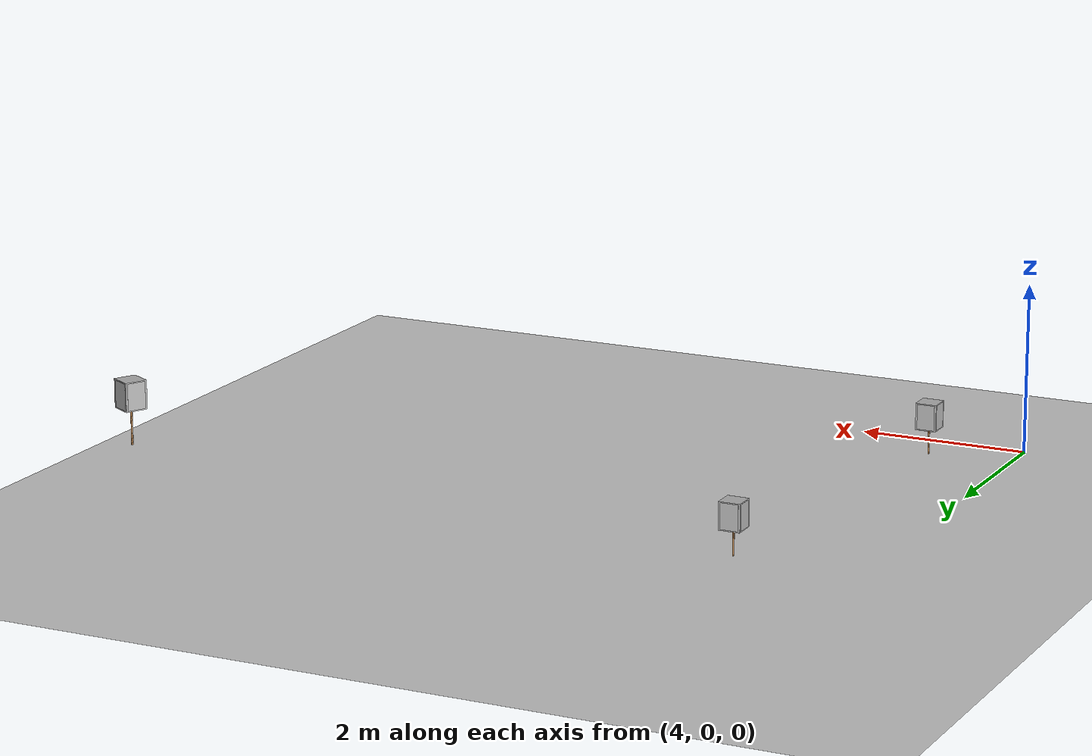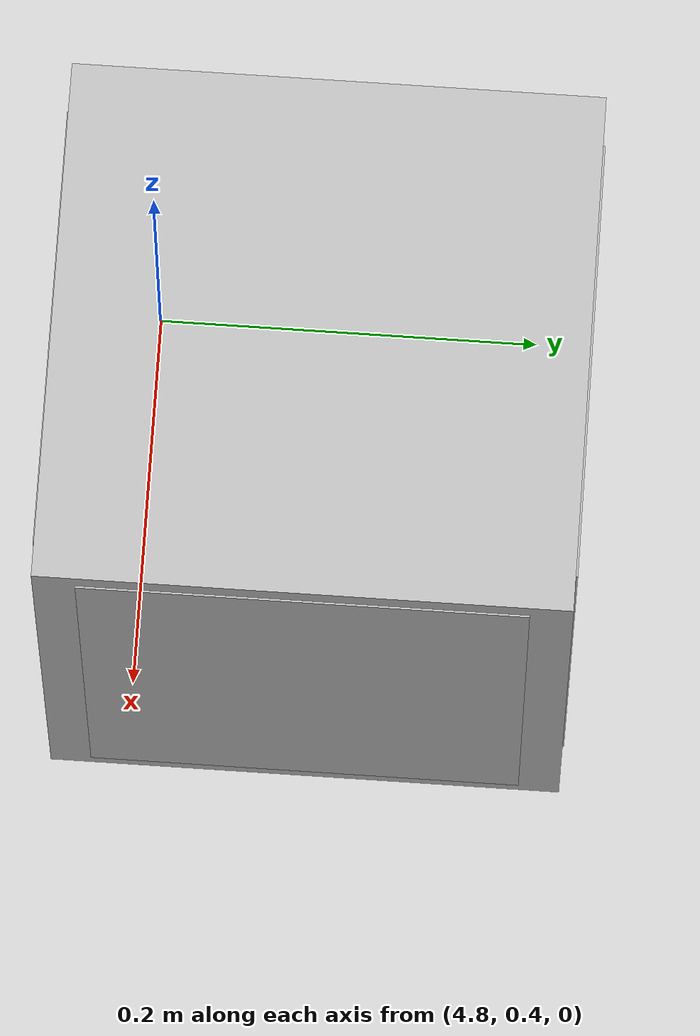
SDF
<?xml version="1.0" ?>
<!-- |    This document was autogenerated by xacro from /home/agrim/antariksh/ERC-Remote-Navigation-Sim/src/leo_erc_desktop/leo_erc_gazebo_worlds/worlds/marsyard2022.world.xacro | -->
<!-- |    EDITING THIS FILE BY HAND IS NOT RECOMMENDED                                 | -->
<?xml-model href="http://sdformat.org/schemas/root.xsd" schematypens="http://www.w3.org/2001/XMLSchema"?>
<sdf version="1.9">
  <world name="marsyard2022">
    <!-- A ground plane -->
    <include>
      <uri>model://ground_plane</uri>
    </include>
    <!-- A global light source -->
    <include>
      <uri>model://sun</uri>
    </include>
    <model name="landmark1">
      <pose>5 0.5 0 0 0 0.0</pose>
      <static>true</static>
      <link name="landmark">
        <visual name="pole_visual">
          <pose>0 0 0.09999999999999999 0 0 0</pose>
          <geometry>
            <cylinder>
              <radius>0.01</radius>
              <length>0.4</length>
            </cylinder>
          </geometry>
          <material>
            <script>
              <name>Gazebo/Wood</name>
            </script>
          </material>
        </visual>
        <collision name="pole_collision">
          <pose>0 0 0.09999999999999999 0 0 0</pose>
          <geometry>
            <cylinder>
              <radius>0.01</radius>
              <length>0.4</length>
            </cylinder>
          </geometry>
        </collision>
        <visual name="box_visual">
          <pose>0 0 0.45999999999999996 0 0 0</pose>
          <geometry>
            <box>
              <size>0.25 0.25 0.32</size>
            </box>
          </geometry>
          <material>
            <script>
              <name>ERC_Landmark/Box</name>
            </script>
          </material>
        </visual>
        <collision name="box_collision">
          <pose>0 0 0.45999999999999996 0 0 0</pose>
          <geometry>
            <box>
              <size>0.25 0.25 0.32</size>
            </box>
          </geometry>
        </collision>
        <visual name="sheet1">
          <pose>0 0.1235 0.45999999999999996 0 0 0</pose>
          <geometry>
            <box>
              <size>0.21 0.005 0.297</size>
            </box>
          </geometry>
          <material>
            <script>
              <name>ERC_Landmark/1</name>
            </script>
          </material>
        </visual>
        <visual name="sheet2">
          <pose>0 -0.1235 0.45999999999999996 0 0 0</pose>
          <geometry>
            <box>
              <size>0.21 0.005 0.297</size>
            </box>
          </geometry>
          <material>
            <script>
              <name>ERC_Landmark/1</name>
            </script>
          </material>
        </visual>
        <visual name="sheet3">
          <pose>0.1235 0 0.45999999999999996 0 0 1.5707963267948966</pose>
          <geometry>
            <box>
              <size>0.21 0.005 0.297</size>
            </box>
          </geometry>
          <material>
            <script>
              <name>ERC_Landmark/1</name>
            </script>
          </material>
        </visual>
        <visual name="sheet4">
          <pose>-0.1235 0 0.45999999999999996 0 0 1.5707963267948966</pose>
          <geometry>
            <box>
              <size>0.21 0.005 0.297</size>
            </box>
          </geometry>
          <material>
            <script>
              <name>ERC_Landmark/1</name>
            </script>
          </material>
        </visual>
      </link>
    </model>
    <model name="landmark2">
      <pose>5.5 5 0 0 0 0.0</pose>
      <static>true</static>
      <link name="landmark">
        <visual name="pole_visual">
          <pose>0 0 0.09999999999999999 0 0 0</pose>
          <geometry>
            <cylinder>
              <radius>0.01</radius>
              <length>0.4</length>
            </cylinder>
          </geometry>
          <material>
            <script>
              <name>Gazebo/Wood</name>
            </script>
          </material>
        </visual>
        <collision name="pole_collision">
          <pose>0 0 0.09999999999999999 0 0 0</pose>
          <geometry>
            <cylinder>
              <radius>0.01</radius>
              <length>0.4</length>
            </cylinder>
          </geometry>
        </collision>
        <visual name="box_visual">
          <pose>0 0 0.45999999999999996 0 0 0</pose>
          <geometry>
            <box>
              <size>0.25 0.25 0.32</size>
            </box>
          </geometry>
          <material>
            <script>
              <name>ERC_Landmark/Box</name>
            </script>
          </material>
        </visual>
        <collision name="box_collision">
          <pose>0 0 0.45999999999999996 0 0 0</pose>
          <geometry>
            <box>
              <size>0.25 0.25 0.32</size>
            </box>
          </geometry>
        </collision>
        <visual name="sheet1">
          <pose>0 0.1235 0.45999999999999996 0 0 0</pose>
          <geometry>
            <box>
              <size>0.21 0.005 0.297</size>
            </box>
          </geometry>
          <material>
            <script>
              <name>ERC_Landmark/2</name>
            </script>
          </material>
        </visual>
        <visual name="sheet2">
          <pose>0 -0.1235 0.45999999999999996 0 0 0</pose>
          <geometry>
            <box>
              <size>0.21 0.005 0.297</size>
            </box>
          </geometry>
          <material>
            <script>
              <name>ERC_Landmark/2</name>
            </script>
          </material>
        </visual>
        <visual name="sheet3">
          <pose>0.1235 0 0.45999999999999996 0 0 1.5707963267948966</pose>
          <geometry>
            <box>
              <size>0.21 0.005 0.297</size>
            </box>
          </geometry>
          <material>
            <script>
              <name>ERC_Landmark/2</name>
            </script>
          </material>
        </visual>
        <visual name="sheet4">
          <pose>-0.1235 0 0.45999999999999996 0 0 1.5707963267948966</pose>
          <geometry>
            <box>
              <size>0.21 0.005 0.297</size>
            </box>
          </geometry>
          <material>
            <script>
              <name>ERC_Landmark/2</name>
            </script>
          </material>
        </visual>
      </link>
    </model>
    <model name="landmark3">
      <pose>11.346193000000003 7.577856 1.262268 0 0 -0.5</pose>
      <static>true</static>
      <link name="landmark">
        <visual name="pole_visual">
          <pose>0 0 0.09999999999999999 0 0 0</pose>
          <geometry>
            <cylinder>
              <radius>0.01</radius>
              <length>0.4</length>
            </cylinder>
          </geometry>
          <material>
            <script>
              <name>Gazebo/Wood</name>
            </script>
          </material>
        </visual>
        <collision name="pole_collision">
          <pose>0 0 0.09999999999999999 0 0 0</pose>
          <geometry>
            <cylinder>
              <radius>0.01</radius>
              <length>0.4</length>
            </cylinder>
          </geometry>
        </collision>
        <visual name="box_visual">
          <pose>0 0 0.45999999999999996 0 0 0</pose>
          <geometry>
            <box>
              <size>0.25 0.25 0.32</size>
            </box>
          </geometry>
          <material>
            <script>
              <name>ERC_Landmark/Box</name>
            </script>
          </material>
        </visual>
        <collision name="box_collision">
          <pose>0 0 0.45999999999999996 0 0 0</pose>
          <geometry>
            <box>
              <size>0.25 0.25 0.32</size>
            </box>
          </geometry>
        </collision>
        <visual name="sheet1">
          <pose>0 0.1235 0.45999999999999996 0 0 0</pose>
          <geometry>
            <box>
              <size>0.21 0.005 0.297</size>
            </box>
          </geometry>
          <material>
            <script>
              <name>ERC_Landmark/3</name>
            </script>
          </material>
        </visual>
        <visual name="sheet2">
          <pose>0 -0.1235 0.45999999999999996 0 0 0</pose>
          <geometry>
            <box>
              <size>0.21 0.005 0.297</size>
            </box>
          </geometry>
          <material>
            <script>
              <name>ERC_Landmark/3</name>
            </script>
          </material>
        </visual>
        <visual name="sheet3">
          <pose>0.1235 0 0.45999999999999996 0 0 1.5707963267948966</pose>
          <geometry>
            <box>
              <size>0.21 0.005 0.297</size>
            </box>
          </geometry>
          <material>
            <script>
              <name>ERC_Landmark/3</name>
            </script>
          </material>
        </visual>
        <visual name="sheet4">
          <pose>-0.1235 0 0.45999999999999996 0 0 1.5707963267948966</pose>
          <geometry>
            <box>
              <size>0.21 0.005 0.297</size>
            </box>
          </geometry>
          <material>
            <script>
              <name>ERC_Landmark/3</name>
            </script>
          </material>
        </visual>
      </link>
    </model>
  </world>
</sdf>
